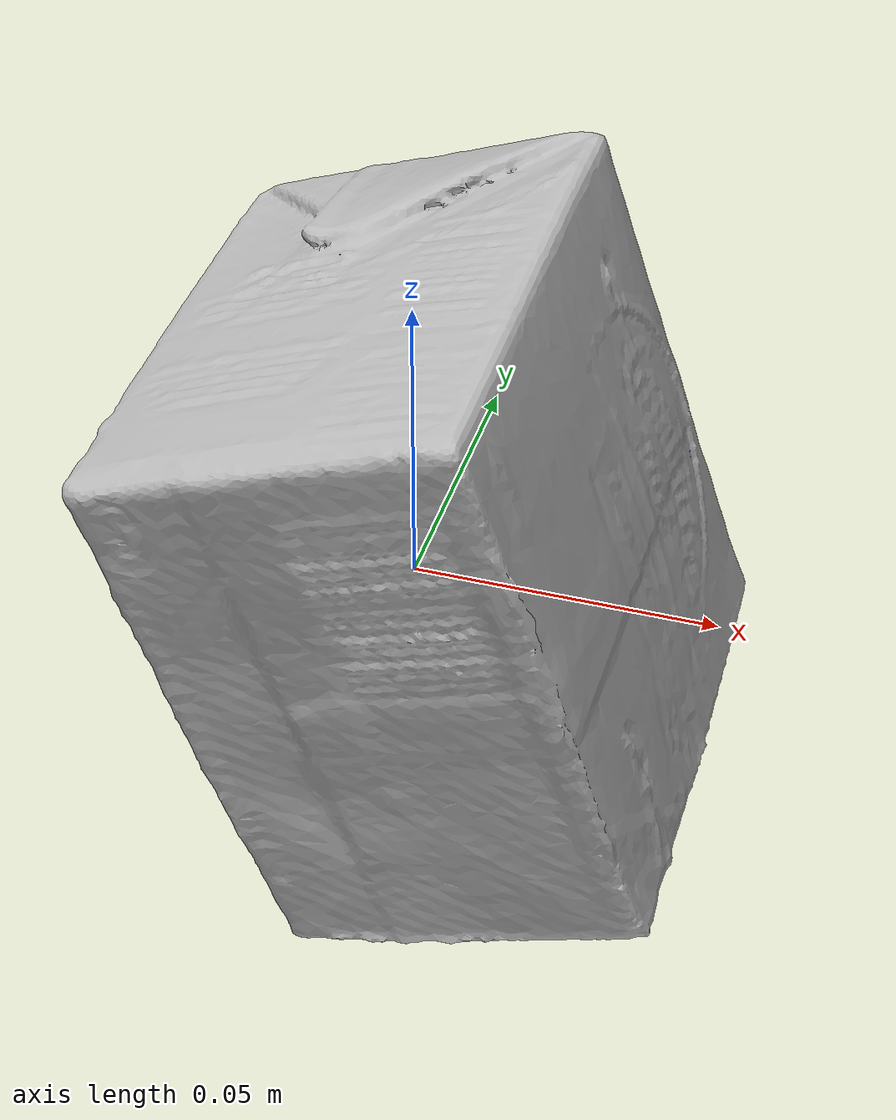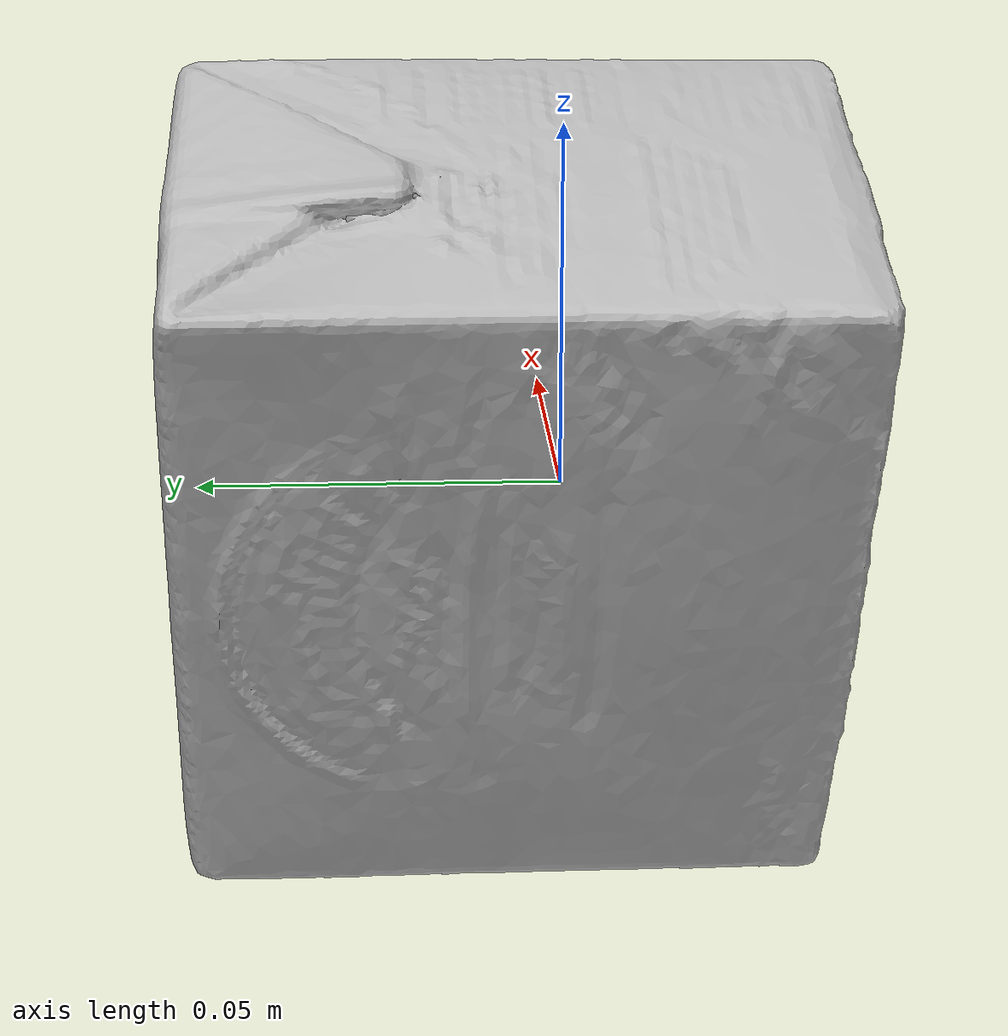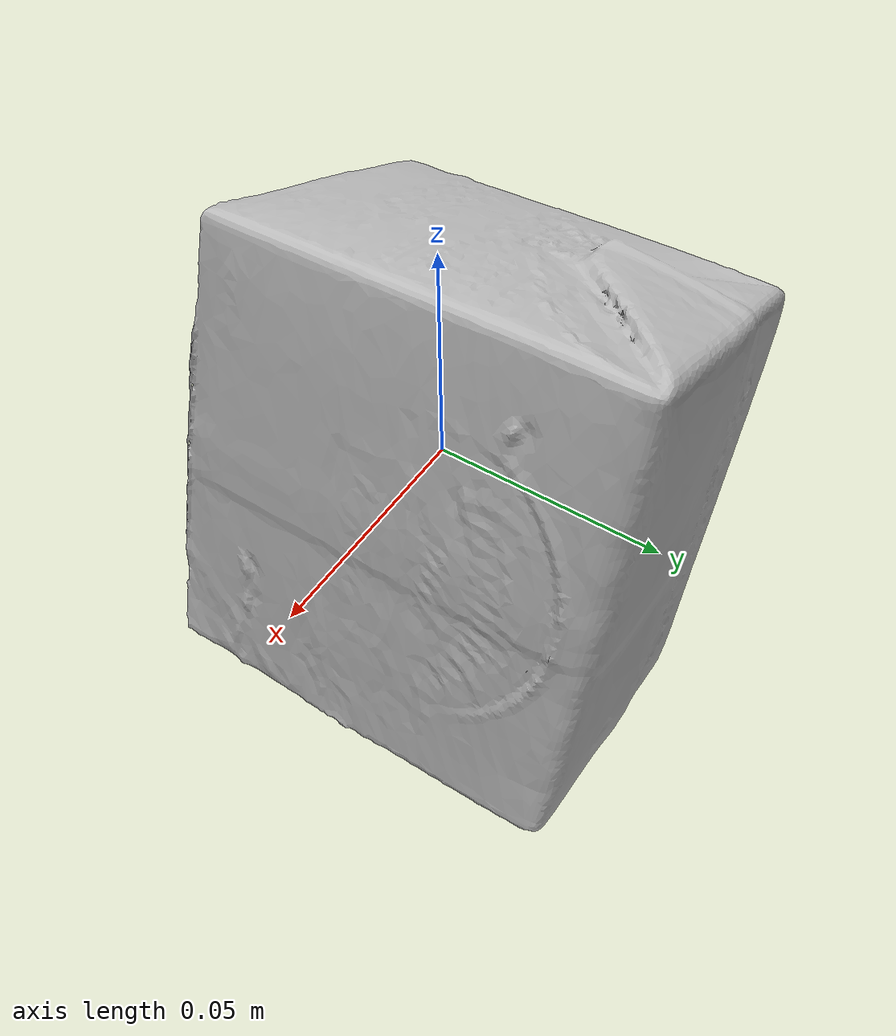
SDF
<?xml version='1.0'?>
<sdf version="1.4">
  <model name="MilkDrinkVanilla">
    <static>false</static>
    <link name="link">
      <inertial>
        <pose>0.0031158278364037642 0.0076271546886618495 0.0007723851701414343 -0.011332070848778115 0.33915139831103486 -3.128851053924566</pose>
        <mass>0.05926385810455885</mass>
        <inertia>
          <ixx>8.845391508458988e-05</ixx>
          <ixy>5.194489601463625e-22</ixy>
          <ixz>2.3875634470036937e-22</ixz>
          <iyy>6.887233690083526e-05</iyy>
          <iyz>4.180005593517354e-21</iyz>
          <izz>6.116170848359068e-05</izz>
        </inertia>
      </inertial>
      <collision name="collision">
        <geometry>
          <mesh>
            <!-- Use a downsampled mesh for collisions -->
            <uri>model:///MilkDrinkVanilla/MilkDrinkVanilla_250_collision.obj</uri>
	        </mesh>
        </geometry>
        <surface>
      </surface>
      </collision>
      <visual name="visual">
        <geometry>
          <mesh>
            <uri>model:///MilkDrinkVanilla/MilkDrinkVanilla_25k_tex.obj</uri>
	        </mesh>
        </geometry>
        <material>
          <script>
            <uri>model:///MilkDrinkVanilla/MilkDrinkVanilla.material</uri>
            <name>MilkDrinkVanilla</name>
          </script>
        </material>
      </visual>
    </link>
  </model>
</sdf>
